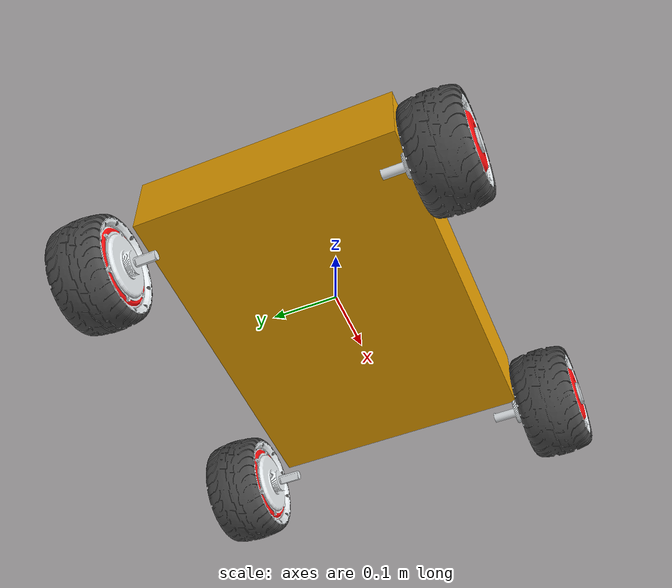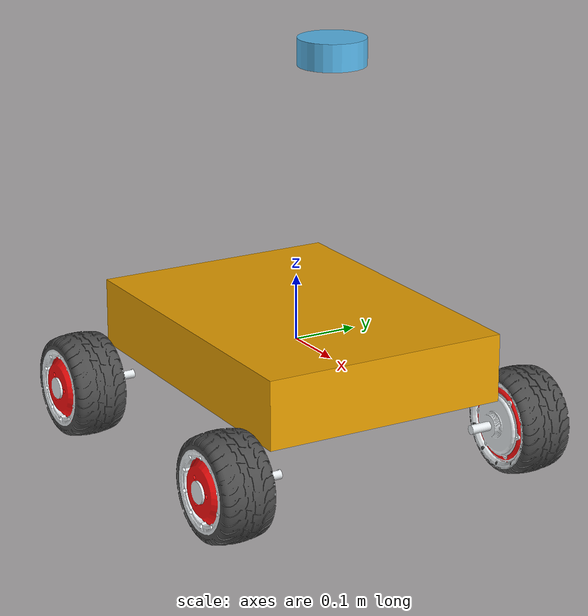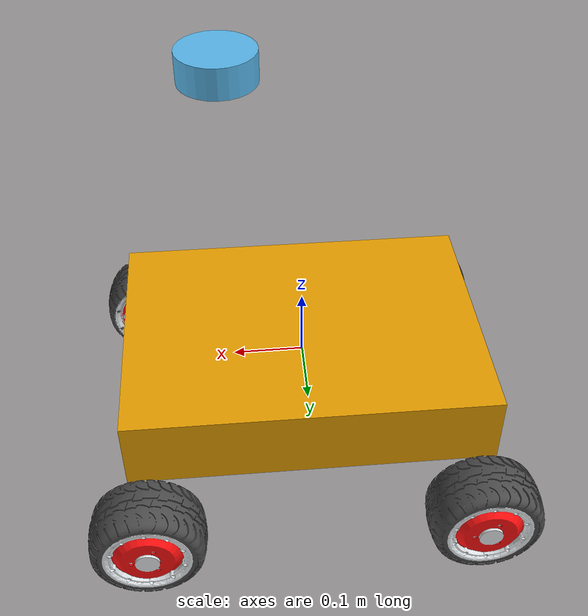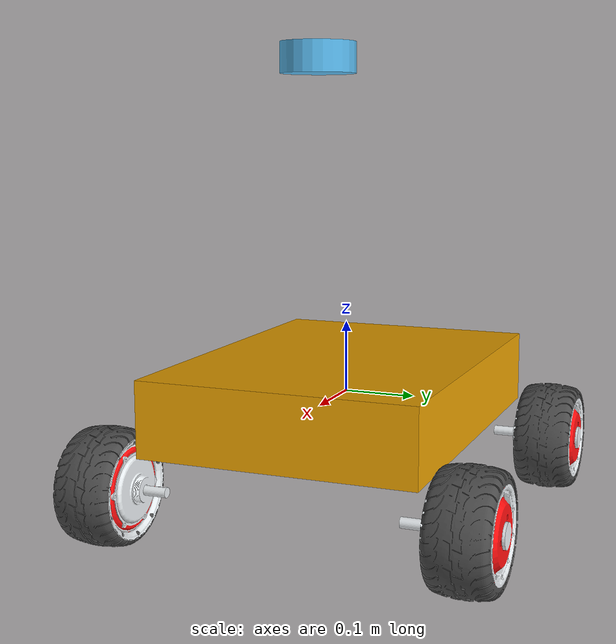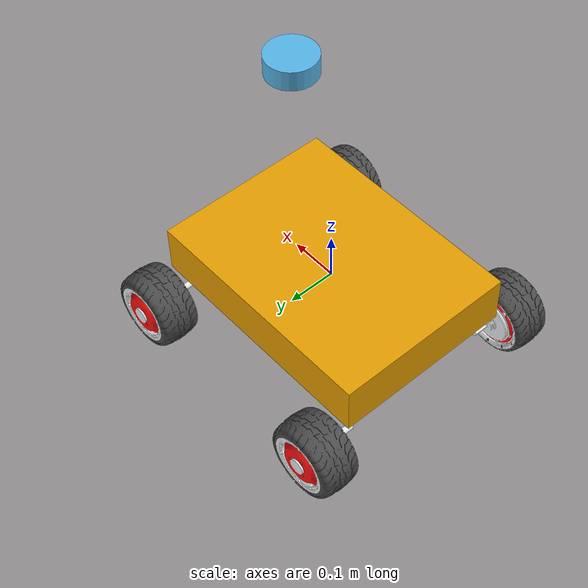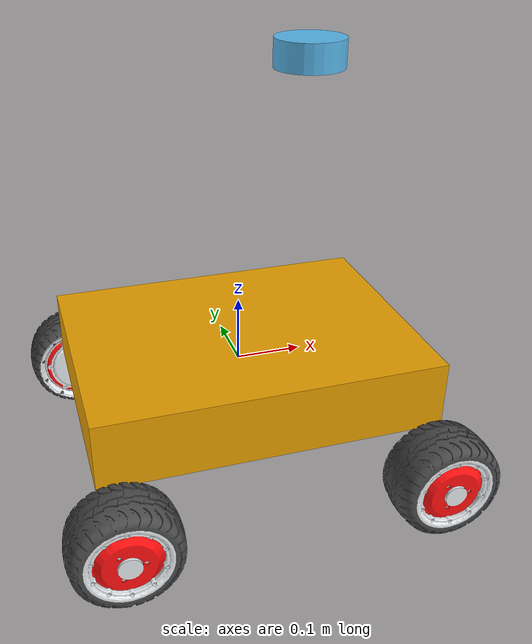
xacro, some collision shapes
<?xml version="1.0"?>
<robot xmlns:xacro="http://www.ros.org/wiki/xacro" name="scout_mini">

  <xacro:property name="PI" value="3.1415926535897931" />

  <!-- Base link -->
  <link name="base_link">
    <visual>
      <origin xyz="0 0 0.0" rpy="${PI/2} 0 -${PI/2}" />
      <geometry>
        <mesh filename="package://scout_mini_description/meshes/body.dae" />
      </geometry>
    </visual>
    <collision>
      <origin xyz="0 0 0" rpy="0 0 0" />
      <geometry>
        <box size="0.514618 0.3816 0.10357" />
      </geometry>
    </collision>
  </link>

  <!-- LiDAR link -->
  <link name="laser_link">
    <visual>
      <geometry>
        <cylinder radius="0.05" length="0.04"/>
      </geometry>
    </visual>
    <collision>
      <geometry>
        <cylinder radius="0.05" length="0.04"/>
      </geometry>
    </collision>
    <inertial>
      <mass value="0.1"/>
      <origin xyz="0 0 0" rpy="0 0 0"/>
      <inertia ixx="1e-4" ixy="0" ixz="0" iyy="1e-4" iyz="0" izz="1e-4"/>
    </inertial>
  </link>

  <joint name="laser_joint" type="fixed">
    <parent link="base_link"/>
    <child link="laser_link"/>
    <origin xyz="0.1 0 0.46" rpy="0 0 0"/>
  </joint>

  <joint name="inertial_joint" type="fixed">
    <parent link="base_link" />
    <child link="inertial_link" />
    <origin xyz="0 0 0" rpy="0 0 0" />
  </joint>

  <link name="inertial_link">
    <inertial>
      <mass value="60" />
      <origin xyz="0 0 0" rpy="0 0 0" />
      <inertia ixx="2.288641" ixy="0" ixz="0" iyy="5.103976" iyz="0" izz="3.431465" />
    </inertial>
  </link>

  <joint name="front_left_wheel_joint" type="continuous">
    <parent link="base_link" />
    <child link="front_left_wheel_link" />
    <origin xyz="0.2319755 0.245 -0.100998" rpy="0 0 0" />
    <axis xyz="0 1 0" rpy="0 0 0" />
  </joint>

  <link name="front_left_wheel_link">
    <visual>
      <origin xyz="0 -0.0367485 0" rpy="-${PI/2} 0 0" />
      <geometry>
        <mesh filename="package://scout_mini_description/meshes/wheel.dae" />
      </geometry>
    </visual>
    <collision>
      <origin xyz="0 -0.0367485 0" rpy="-${PI/2} 0 0" />
      <geometry>
        <mesh filename="package://scout_mini_description/meshes/wheel.dae" />
      </geometry>
    </collision>
    <inertial>
      <mass value="15" />
      <origin xyz="0 0 0" rpy="0 0 0" />
      <inertia ixx="0.6171" ixy="0" ixz="0" iyy="0.6171" iyz="0" izz="0.1361" />
    </inertial>
  </link>

  <joint name="rear_left_wheel_joint" type="continuous">
    <parent link="base_link" />
    <child link="rear_left_wheel_link" />
    <origin xyz="-0.2319755 0.245 -0.100998" rpy="0 0 0" />
    <axis xyz="0 1 0" rpy="0 0 0" />
  </joint>

  <link name="rear_left_wheel_link">
    <visual>
      <origin xyz="0 -0.0367485 0" rpy="-${PI/2} 0 0" />
      <geometry>
        <mesh filename="package://scout_mini_description/meshes/wheel.dae" />
      </geometry>
    </visual>
    <collision>
      <origin xyz="0 -0.0367485 0" rpy="-${PI/2} 0 0" />
      <geometry>
        <mesh filename="package://scout_mini_description/meshes/wheel.dae" />
      </geometry>
    </collision>
    <inertial>
      <mass value="15" />
      <origin xyz="0 0 0" rpy="0 0 0" />
      <inertia ixx="0.6171" ixy="0" ixz="0" iyy="0.6171" iyz="0" izz="0.1361" />
    </inertial>
  </link>

  <joint name="front_right_wheel_joint" type="continuous">
    <parent link="base_link" />
    <child link="front_right_wheel_link" />
    <origin xyz="0.2319755 -0.245 -0.099998" rpy="0 0 0" />
    <axis xyz="0 1 0" rpy="0 0 0" />
  </joint>

  <link name="front_right_wheel_link">
    <visual>
      <origin xyz="0 0.0367485 0" rpy="${PI/2} 0 0" />
      <geometry>
        <mesh filename="package://scout_mini_description/meshes/wheel.dae" />
      </geometry>
    </visual>
    <collision>
      <origin xyz="0 0.0367485 0" rpy="${PI/2} 0 0" />
      <geometry>
        <mesh filename="package://scout_mini_description/meshes/wheel.dae" />
      </geometry>
    </collision>
    <inertial>
      <mass value="15" />
      <origin xyz="0 0 0" rpy="0 0 0" />
      <inertia ixx="0.6171" ixy="0" ixz="0" iyy="0.6171" iyz="0" izz="0.1361" />
    </inertial>
  </link>

  <joint name="rear_right_wheel_joint" type="continuous">
    <parent link="base_link" />
    <child link="rear_right_wheel_link" />
    <origin xyz="-0.2319755 -0.245 -0.099998" rpy="0 0 0" />
    <axis xyz="0 1 0" rpy="0 0 0" />
  </joint>

  <link name="rear_right_wheel_link">
    <visual>
      <origin xyz="0 0.0367485 0" rpy="${PI/2} 0 0" />
      <geometry>
        <mesh filename="package://scout_mini_description/meshes/wheel.dae" />
      </geometry>
    </visual>
    <collision>
      <origin xyz="0 0.0367485 0" rpy="${PI/2} 0 0" />
      <geometry>
        <mesh filename="package://scout_mini_description/meshes/wheel.dae" />
      </geometry>
    </collision>
    <inertial>
      <mass value="15" />
      <origin xyz="0 0 0" rpy="0 0 0" />
      <inertia ixx="0.6171" ixy="0" ixz="0" iyy="0.6171" iyz="0" izz="0.1361" />
    </inertial>
  </link>

  <ros2_control name="scout_mini_control" type="system">
    <hardware>
      <plugin>scout_mini_hardware/ScoutMiniHardware</plugin>
      <param name="interface">can0</param>
      <param name="wheel_radius">0.0875</param>
      <param name="wheel_separation">0.490</param>
    </hardware>
    <joint name="front_left_wheel_joint">
      <command_interface name="velocity">
        <param name="min">-1</param>
        <param name="max">1</param>
      </command_interface>
      <state_interface name="position" />
      <state_interface name="velocity" />
      <state_interface name="effort" />
    </joint>
    <joint name="rear_left_wheel_joint">
      <command_interface name="velocity">
        <param name="min">-1</param>
        <param name="max">1</param>
      </command_interface>
      <state_interface name="position" />
      <state_interface name="velocity" />
      <state_interface name="effort" />
    </joint>
    <joint name="front_right_wheel_joint">
      <command_interface name="velocity">
        <param name="min">-1</param>
        <param name="max">1</param>
      </command_interface>
      <state_interface name="position" />
      <state_interface name="velocity" />
      <state_interface name="effort" />
    </joint>
    <joint name="rear_right_wheel_joint">
      <command_interface name="velocity">
        <param name="min">-1</param>
        <param name="max">1</param>
      </command_interface>
      <state_interface name="position" />
      <state_interface name="velocity" />
      <state_interface name="effort" />
    </joint>
  </ros2_control>

</robot>
